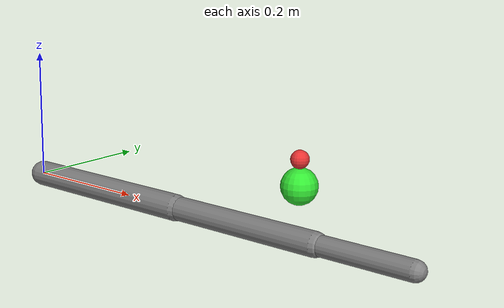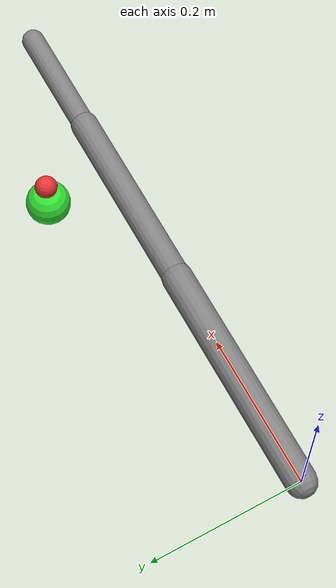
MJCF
<mujoco model="planar_3dof_ik">
  <option gravity="0 0 0" timestep="0.002"/>

  <worldbody>
    <body name="link1" pos="0 0 0">
      <joint name="j1" type="hinge" axis="0 0 1" damping="0.02"/>
      <geom type="capsule" fromto="0 0 0 0.3 0 0" size="0.02" mass="0.3"/>

      <body name="link2" pos="0.3 0 0">
        <joint name="j2" type="hinge" axis="0 0 1" damping="0.02"/>
        <geom type="capsule" fromto="0 0 0 0.25 0 0" size="0.018" mass="0.25"/>

        <body name="link3" pos="0.25 0 0">
          <joint name="j3" type="hinge" axis="0 0 1" damping="0.02"/>
          <geom type="capsule" fromto="0 0 0 0.15 0 0" size="0.015" mass="0.15"/>
          <site name="end_site" pos="0.15 0 0" size="0.01"/>
        </body>
      </body>
    </body>

    <body name="target_marker" mocap="true" pos="0.45 0.1 0.04">
      <geom type="sphere" size="0.028" rgba="0.2 0.9 0.2 1" contype="0" conaffinity="0"/>
    </body>

    <body name="end_marker" mocap="true" pos="0.45 0.1 0.08">
      <geom type="sphere" size="0.014" rgba="0.9 0.2 0.2 1" contype="0" conaffinity="0"/>
    </body>
  </worldbody>

  <actuator>
    <motor name="m1" joint="j1" ctrlrange="-4 4"/>
    <motor name="m2" joint="j2" ctrlrange="-4 4"/>
    <motor name="m3" joint="j3" ctrlrange="-4 4"/>
  </actuator>
</mujoco>
